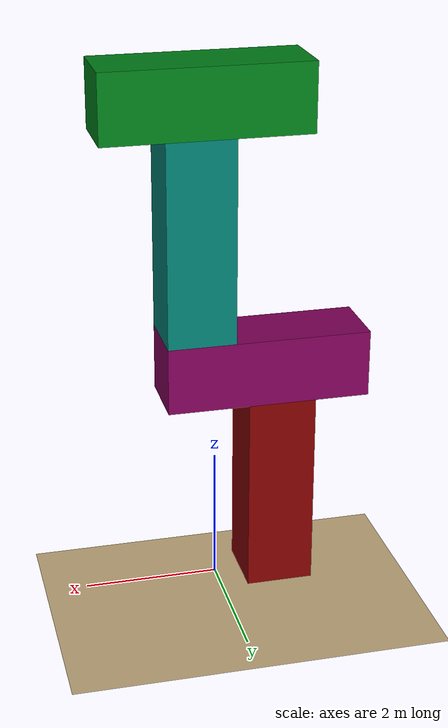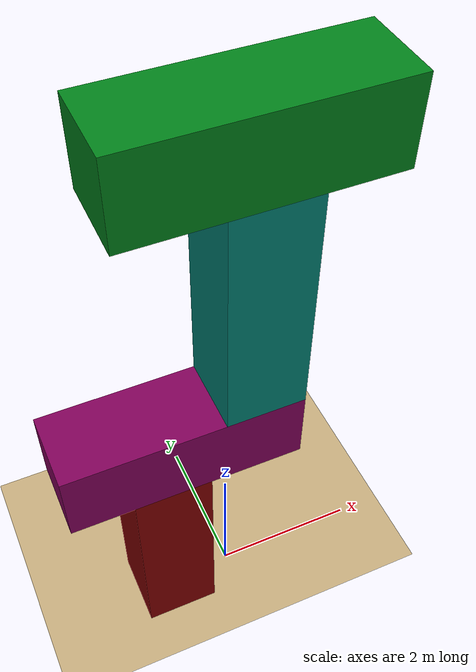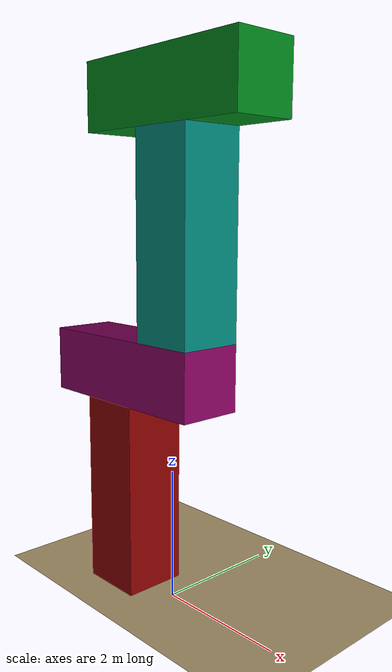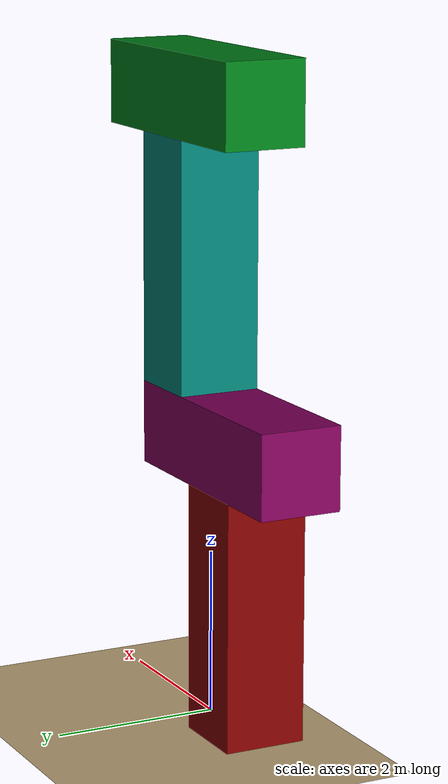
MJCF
<mujoco>
  <!-- This model leads to bad contacts from mjc_BoxBox -->

  <default>
    <geom rgba="1 1 1 1" gap="1e-3"/>
    <site type="sphere" rgba="0 0 0 0" size="0.001"/>
  </default>

  <worldbody>
    <light diffuse="1 1 1" pos="-5 -17.5 15" dir="0.24 0.84 -0.48"/>
    <camera name="fixed" pos="0 -25 8" euler="90 0 0"/>
    <geom name="ground" pos="0 0 0" quat="1 0 0 0" rgba="0.770 0.670 0.490 1" size="50 50 1" type="plane"/>
    <body name="block01" pos="-0.9 0 1.5" quat="1 0 0 0">
      <freejoint/>
      <geom mass="1" name="geom01" rgba="0.5 0 0 1" size="0.5 0.5 1.5" type="box"/>
    </body>
    <body name="block02" pos="-0.7 0 3.5" quat="1 0 0 0">
      <freejoint/>
      <geom mass="1" name="geom02" rgba="0.5 0 0.350 1" size="1.5 0.5 0.5" type="box"/>
    </body>
    <body name="block03" pos="0.3 0 5.5" quat="1 0 0 0">
      <freejoint/>
      <geom mass="1" name="geom03" rgba="0 0.5 0.450 1" size="0.5 0.5 1.5" type="box"/>
    </body>
    <body name="block04" pos="0.200 1e-9 7.5" quat="1 0 0 0">
      <freejoint/>
      <geom mass="1" name="geom04" rgba="0 0.5 0.099 1" size="1.5 0.5 0.5" type="box"/>
    </body>
  </worldbody>

  <contact>
    <exclude body1="world" body2="block01"/>
    <exclude body1="block03" body2="block02"/>
  </contact>

</mujoco>
